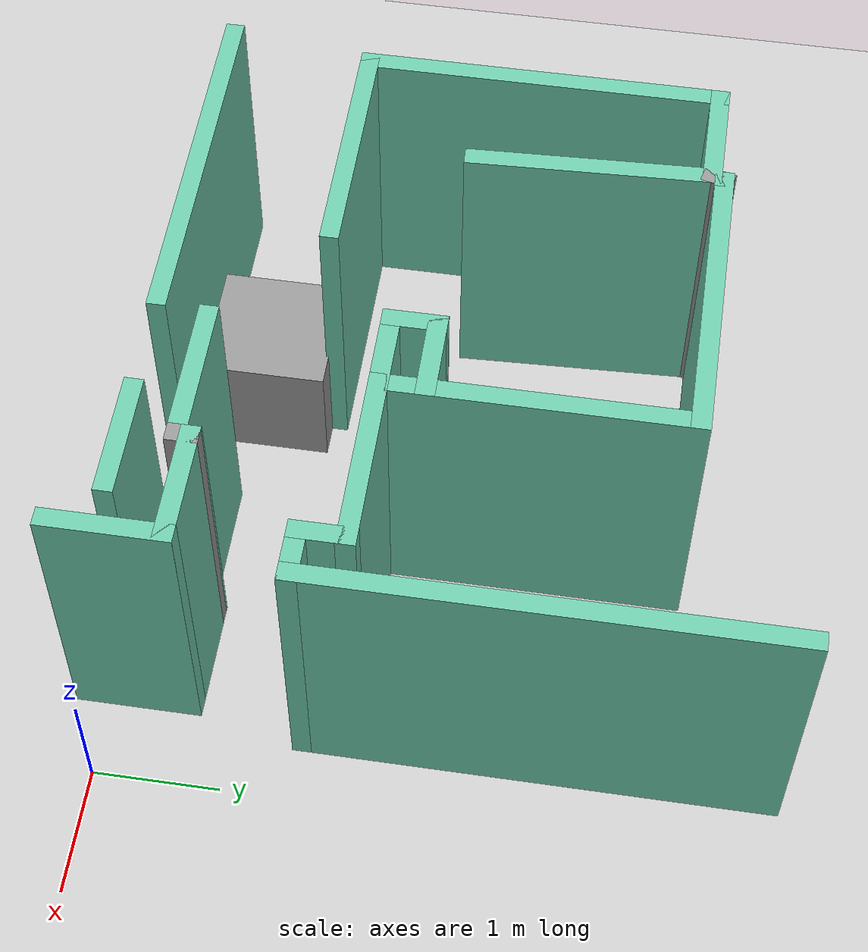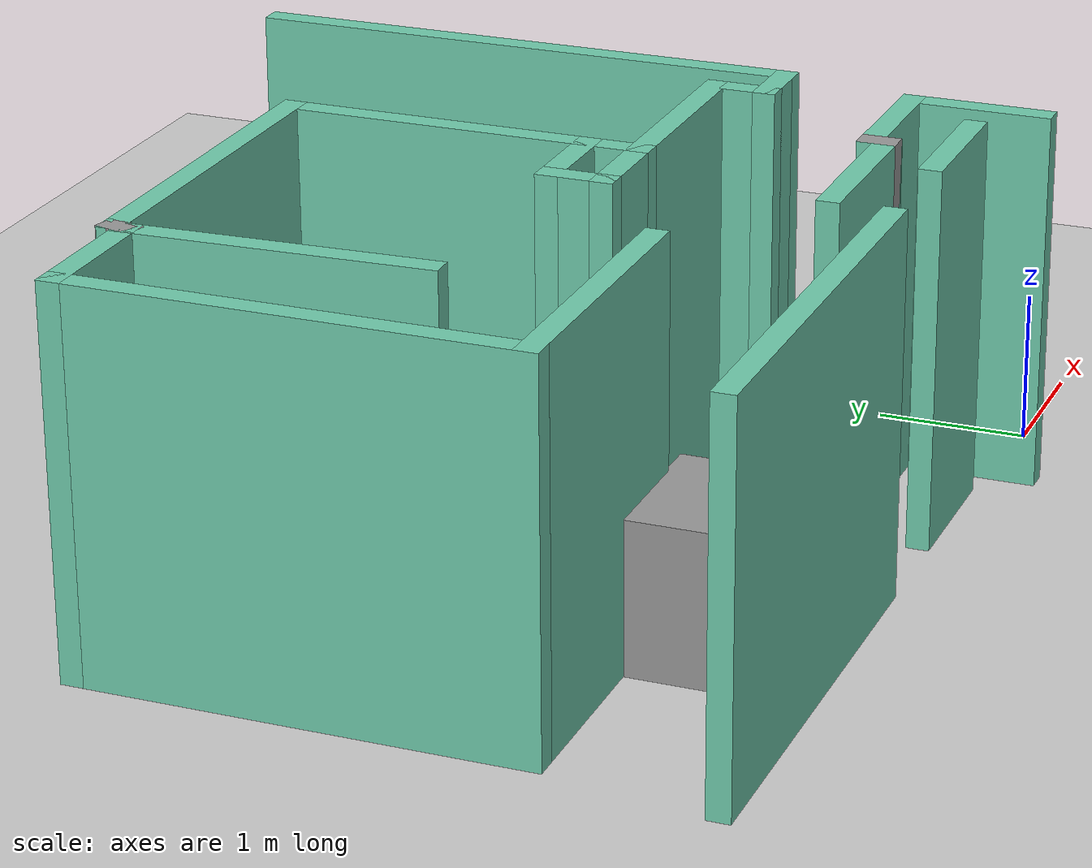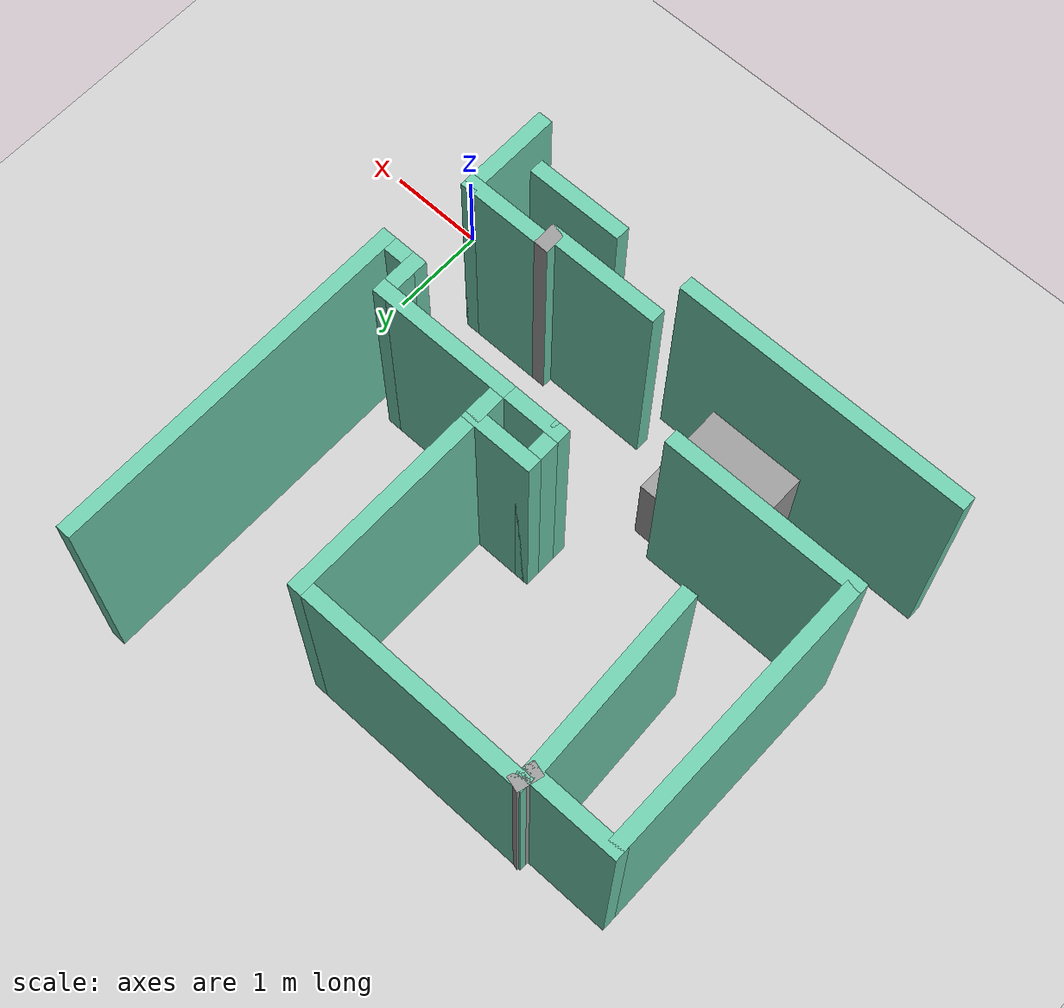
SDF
<sdf version="1.6">
 <world name="default">
  <model name="ground_plane">
   <static>1</static>
   <link name="link">
    <collision name="collision">
     <geometry><plane><normal>0 0 1</normal><size>100 100</size></plane></geometry>
     <surface><friction><ode><mu>100</mu><mu2>50</mu2></ode></friction></surface>
    </collision>
    <visual name="visual">
     <cast_shadows>0</cast_shadows>
     <geometry><plane><normal>0 0 1</normal><size>100 100</size></plane></geometry>
     <material>
      <script><uri>file://media/materials/scripts/gazebo.material</uri><name>Gazebo/Grey</name></script>
     </material>
    </visual>
   </link>
  </model>
  <model name="map_28">
   <link name="Wall_10">
    <pose>-3.17521 3.23882 0 0 -0 3.14159</pose>
    <visual name="Wall_10_Visual">
     <pose>0 0 1.25 0 -0 0</pose>
     <geometry><box><size>2.5 0.15 2.5</size></box></geometry>
     <material>
      <script><uri>file://media/materials/scripts/gazebo.material</uri><name>Gazebo/Grey</name></script>
      <ambient>0.435294 0.796078 0.67451 1</ambient>
      <shader type="pixel"/>
     </material>
     <meta><layer>0</layer></meta>
    </visual>
    <collision name="Wall_10_Collision">
     <pose>0 0 1.25 0 -0 0</pose>
     <geometry><box><size>2.5 0.15 2.5</size></box></geometry>
     <surface>
      <friction>
       <ode><mu>1</mu><mu2>1</mu2><fdir1>0 0 0</fdir1><slip1>0</slip1><slip2>0</slip2></ode>
       <torsional>
        <coefficient>1</coefficient>
        <patch_radius>0</patch_radius>
        <surface_radius>0</surface_radius>
        <use_patch_radius>1</use_patch_radius>
        <ode><slip>0</slip></ode>
       </torsional>
      </friction>
      <bounce><restitution_coefficient>0</restitution_coefficient><threshold>1e+06</threshold></bounce>
      <contact>
       <collide_without_contact>0</collide_without_contact>
       <collide_without_contact_bitmask>1</collide_without_contact_bitmask>
       <collide_bitmask>1</collide_bitmask>
       <ode>
        <soft_cfm>0</soft_cfm>
        <soft_erp>0.2</soft_erp>
        <kp>1e+13</kp>
        <kd>1</kd>
        <max_vel>0.01</max_vel>
        <min_depth>0</min_depth>
       </ode>
       <bullet>
        <split_impulse>1</split_impulse>
        <split_impulse_penetration_threshold>-0.01</split_impulse_penetration_threshold>
        <soft_cfm>0</soft_cfm>
        <soft_erp>0.2</soft_erp>
        <kp>1e+13</kp>
        <kd>1</kd>
       </bullet>
      </contact>
     </surface>
    </collision>
   </link>
   <link name="Wall_11">
    <pose>-4.3502 3.23882 0 0 -0 0</pose>
    <visual name="Wall_11_Visual">
     <pose>0 0 1.25 0 -0 0</pose>
     <geometry><box><size>0.15 0.15 2.5</size></box></geometry>
     <material>
      <script><uri>file://media/materials/scripts/gazebo.material</uri><name>Gazebo/Grey</name></script>
      <ambient>0.435294 0.796078 0.67451 1</ambient>
      <shader type="pixel"/>
     </material>
     <meta><layer>0</layer></meta>
    </visual>
    <collision name="Wall_11_Collision">
     <pose>0 0 1.25 0 -0 0</pose>
     <geometry><box><size>0.15 0.15 2.5</size></box></geometry>
     <surface>
      <friction>
       <ode><mu>1</mu><mu2>1</mu2><fdir1>0 0 0</fdir1><slip1>0</slip1><slip2>0</slip2></ode>
       <torsional>
        <coefficient>1</coefficient>
        <patch_radius>0</patch_radius>
        <surface_radius>0</surface_radius>
        <use_patch_radius>1</use_patch_radius>
        <ode><slip>0</slip></ode>
       </torsional>
      </friction>
      <bounce><restitution_coefficient>0</restitution_coefficient><threshold>1e+06</threshold></bounce>
      <contact>
       <collide_without_contact>0</collide_without_contact>
       <collide_without_contact_bitmask>1</collide_without_contact_bitmask>
       <collide_bitmask>1</collide_bitmask>
       <ode>
        <soft_cfm>0</soft_cfm>
        <soft_erp>0.2</soft_erp>
        <kp>1e+13</kp>
        <kd>1</kd>
        <max_vel>0.01</max_vel>
        <min_depth>0</min_depth>
       </ode>
       <bullet>
        <split_impulse>1</split_impulse>
        <split_impulse_penetration_threshold>-0.01</split_impulse_penetration_threshold>
        <soft_cfm>0</soft_cfm>
        <soft_erp>0.2</soft_erp>
        <kp>1e+13</kp>
        <kd>1</kd>
       </bullet>
      </contact>
     </surface>
    </collision>
   </link>
   <link name="Wall_114">
    <pose>-4.33787 2.20912 0 0 -0 1.61173</pose>
    <visual name="Wall_114_Visual">
     <pose>0 0 1.25 0 -0 0</pose>
     <geometry><box><size>2.01778 0.15 2.5</size></box></geometry>
     <material>
      <script><uri>file://media/materials/scripts/gazebo.material</uri><name>Gazebo/Grey</name></script>
      <ambient>0.435294 0.796078 0.67451 1</ambient>
      <shader type="pixel"/>
     </material>
     <meta><layer>0</layer></meta>
    </visual>
    <collision name="Wall_114_Collision">
     <pose>0 0 1.25 0 -0 0</pose>
     <geometry><box><size>2.01778 0.15 2.5</size></box></geometry>
     <surface>
      <friction>
       <ode><mu>1</mu><mu2>1</mu2><fdir1>0 0 0</fdir1><slip1>0</slip1><slip2>0</slip2></ode>
       <torsional>
        <coefficient>1</coefficient>
        <patch_radius>0</patch_radius>
        <surface_radius>0</surface_radius>
        <use_patch_radius>1</use_patch_radius>
        <ode><slip>0</slip></ode>
       </torsional>
      </friction>
      <bounce><restitution_coefficient>0</restitution_coefficient><threshold>1e+06</threshold></bounce>
      <contact>
       <collide_without_contact>0</collide_without_contact>
       <collide_without_contact_bitmask>1</collide_without_contact_bitmask>
       <collide_bitmask>1</collide_bitmask>
       <ode>
        <soft_cfm>0</soft_cfm>
        <soft_erp>0.2</soft_erp>
        <kp>1e+13</kp>
        <kd>1</kd>
        <max_vel>0.01</max_vel>
        <min_depth>0</min_depth>
       </ode>
       <bullet>
        <split_impulse>1</split_impulse>
        <split_impulse_penetration_threshold>-0.01</split_impulse_penetration_threshold>
        <soft_cfm>0</soft_cfm>
        <soft_erp>0.2</soft_erp>
        <kp>1e+13</kp>
        <kd>1</kd>
       </bullet>
      </contact>
     </surface>
    </collision>
   </link>
   <link name="Wall_118">
    <pose>-2.30021 0.888824 0 0 -0 3.14159</pose>
    <visual name="Wall_118_Visual">
     <pose>0 0 1.25 0 -0 0</pose>
     <geometry><box><size>0.75 0.15 2.5</size></box></geometry>
     <material>
      <script><uri>file://media/materials/scripts/gazebo.material</uri><name>Gazebo/Grey</name></script>
      <ambient>0.435294 0.796078 0.67451 1</ambient>
      <shader type="pixel"/>
     </material>
     <meta><layer>0</layer></meta>
    </visual>
    <collision name="Wall_118_Collision">
     <pose>0 0 1.25 0 -0 0</pose>
     <geometry><box><size>0.75 0.15 2.5</size></box></geometry>
     <surface>
      <friction>
       <ode><mu>1</mu><mu2>1</mu2><fdir1>0 0 0</fdir1><slip1>0</slip1><slip2>0</slip2></ode>
       <torsional>
        <coefficient>1</coefficient>
        <patch_radius>0</patch_radius>
        <surface_radius>0</surface_radius>
        <use_patch_radius>1</use_patch_radius>
        <ode><slip>0</slip></ode>
       </torsional>
      </friction>
      <bounce><restitution_coefficient>0</restitution_coefficient><threshold>1e+06</threshold></bounce>
      <contact>
       <collide_without_contact>0</collide_without_contact>
       <collide_without_contact_bitmask>1</collide_without_contact_bitmask>
       <collide_bitmask>1</collide_bitmask>
       <ode>
        <soft_cfm>0</soft_cfm>
        <soft_erp>0.2</soft_erp>
        <kp>1e+13</kp>
        <kd>1</kd>
        <max_vel>0.01</max_vel>
        <min_depth>0</min_depth>
       </ode>
       <bullet>
        <split_impulse>1</split_impulse>
        <split_impulse_penetration_threshold>-0.01</split_impulse_penetration_threshold>
        <soft_cfm>0</soft_cfm>
        <soft_erp>0.2</soft_erp>
        <kp>1e+13</kp>
        <kd>1</kd>
       </bullet>
      </contact>
     </surface>
    </collision>
   </link>
   <link name="Wall_119">
    <pose>-2.6002 1.06382 0 0 -0 1.5708</pose>
    <visual name="Wall_119_Visual">
     <pose>0 0 1.25 0 -0 0</pose>
     <geometry><box><size>0.5 0.15 2.5</size></box></geometry>
     <material>
      <script><uri>file://media/materials/scripts/gazebo.material</uri><name>Gazebo/Grey</name></script>
      <ambient>0.435294 0.796078 0.67451 1</ambient>
      <shader type="pixel"/>
     </material>
     <meta><layer>0</layer></meta>
    </visual>
    <collision name="Wall_119_Collision">
     <pose>0 0 1.25 0 -0 0</pose>
     <geometry><box><size>0.5 0.15 2.5</size></box></geometry>
     <surface>
      <friction>
       <ode><mu>1</mu><mu2>1</mu2><fdir1>0 0 0</fdir1><slip1>0</slip1><slip2>0</slip2></ode>
       <torsional>
        <coefficient>1</coefficient>
        <patch_radius>0</patch_radius>
        <surface_radius>0</surface_radius>
        <use_patch_radius>1</use_patch_radius>
        <ode><slip>0</slip></ode>
       </torsional>
      </friction>
      <bounce><restitution_coefficient>0</restitution_coefficient><threshold>1e+06</threshold></bounce>
      <contact>
       <collide_without_contact>0</collide_without_contact>
       <collide_without_contact_bitmask>1</collide_without_contact_bitmask>
       <collide_bitmask>1</collide_bitmask>
       <ode>
        <soft_cfm>0</soft_cfm>
        <soft_erp>0.2</soft_erp>
        <kp>1e+13</kp>
        <kd>1</kd>
        <max_vel>0.01</max_vel>
        <min_depth>0</min_depth>
       </ode>
       <bullet>
        <split_impulse>1</split_impulse>
        <split_impulse_penetration_threshold>-0.01</split_impulse_penetration_threshold>
        <soft_cfm>0</soft_cfm>
        <soft_erp>0.2</soft_erp>
        <kp>1e+13</kp>
        <kd>1</kd>
       </bullet>
      </contact>
     </surface>
    </collision>
   </link>
   <link name="Wall_120">
    <pose>-2.30021 1.23882 0 0 -0 0</pose>
    <visual name="Wall_120_Visual">
     <pose>0 0 1.25 0 -0 0</pose>
     <geometry><box><size>0.75 0.15 2.5</size></box></geometry>
     <material>
      <script><uri>file://media/materials/scripts/gazebo.material</uri><name>Gazebo/Grey</name></script>
      <ambient>0.435294 0.796078 0.67451 1</ambient>
      <shader type="pixel"/>
     </material>
     <meta><layer>0</layer></meta>
    </visual>
    <collision name="Wall_120_Collision">
     <pose>0 0 1.25 0 -0 0</pose>
     <geometry><box><size>0.75 0.15 2.5</size></box></geometry>
     <surface>
      <friction>
       <ode><mu>1</mu><mu2>1</mu2><fdir1>0 0 0</fdir1><slip1>0</slip1><slip2>0</slip2></ode>
       <torsional>
        <coefficient>1</coefficient>
        <patch_radius>0</patch_radius>
        <surface_radius>0</surface_radius>
        <use_patch_radius>1</use_patch_radius>
        <ode><slip>0</slip></ode>
       </torsional>
      </friction>
      <bounce><restitution_coefficient>0</restitution_coefficient><threshold>1e+06</threshold></bounce>
      <contact>
       <collide_without_contact>0</collide_without_contact>
       <collide_without_contact_bitmask>1</collide_without_contact_bitmask>
       <collide_bitmask>1</collide_bitmask>
       <ode>
        <soft_cfm>0</soft_cfm>
        <soft_erp>0.2</soft_erp>
        <kp>1e+13</kp>
        <kd>1</kd>
        <max_vel>0.01</max_vel>
        <min_depth>0</min_depth>
       </ode>
       <bullet>
        <split_impulse>1</split_impulse>
        <split_impulse_penetration_threshold>-0.01</split_impulse_penetration_threshold>
        <soft_cfm>0</soft_cfm>
        <soft_erp>0.2</soft_erp>
        <kp>1e+13</kp>
        <kd>1</kd>
       </bullet>
      </contact>
     </surface>
    </collision>
   </link>
   <link name="Wall_14">
    <pose>-4.36315 3.19053 0 0 0 -1.8326</pose>
    <visual name="Wall_14_Visual">
     <pose>0 0 1.25 0 -0 0</pose>
     <geometry><box><size>0.25 0.15 2.5</size></box></geometry>
     <material>
      <script><uri>file://media/materials/scripts/gazebo.material</uri><name>Gazebo/Grey</name></script>
      <ambient>1 1 1 1</ambient>
      <shader type="pixel"/>
     </material>
     <meta><layer>0</layer></meta>
    </visual>
    <collision name="Wall_14_Collision">
     <pose>0 0 1.25 0 -0 0</pose>
     <geometry><box><size>0.25 0.15 2.5</size></box></geometry>
     <surface>
      <friction>
       <ode><mu>1</mu><mu2>1</mu2><fdir1>0 0 0</fdir1><slip1>0</slip1><slip2>0</slip2></ode>
       <torsional>
        <coefficient>1</coefficient>
        <patch_radius>0</patch_radius>
        <surface_radius>0</surface_radius>
        <use_patch_radius>1</use_patch_radius>
        <ode><slip>0</slip></ode>
       </torsional>
      </friction>
      <bounce><restitution_coefficient>0</restitution_coefficient><threshold>1e+06</threshold></bounce>
      <contact>
       <collide_without_contact>0</collide_without_contact>
       <collide_without_contact_bitmask>1</collide_without_contact_bitmask>
       <collide_bitmask>1</collide_bitmask>
       <ode>
        <soft_cfm>0</soft_cfm>
        <soft_erp>0.2</soft_erp>
        <kp>1e+13</kp>
        <kd>1</kd>
        <max_vel>0.01</max_vel>
        <min_depth>0</min_depth>
       </ode>
       <bullet>
        <split_impulse>1</split_impulse>
        <split_impulse_penetration_threshold>-0.01</split_impulse_penetration_threshold>
        <soft_cfm>0</soft_cfm>
        <soft_erp>0.2</soft_erp>
        <kp>1e+13</kp>
        <kd>1</kd>
       </bullet>
      </contact>
     </surface>
    </collision>
   </link>
   <link name="Wall_15">
    <pose>-4.80109 3.14223 0 0 -0 3.14159</pose>
    <visual name="Wall_15_Visual">
     <pose>0 0 1.25 0 -0 0</pose>
     <geometry><box><size>1 0.15 2.5</size></box></geometry>
     <material>
      <script><uri>file://media/materials/scripts/gazebo.material</uri><name>Gazebo/Grey</name></script>
      <ambient>0.435294 0.796078 0.67451 1</ambient>
      <shader type="pixel"/>
     </material>
     <meta><layer>0</layer></meta>
    </visual>
    <collision name="Wall_15_Collision">
     <pose>0 0 1.25 0 -0 0</pose>
     <geometry><box><size>1 0.15 2.5</size></box></geometry>
     <surface>
      <friction>
       <ode><mu>1</mu><mu2>1</mu2><fdir1>0 0 0</fdir1><slip1>0</slip1><slip2>0</slip2></ode>
       <torsional>
        <coefficient>1</coefficient>
        <patch_radius>0</patch_radius>
        <surface_radius>0</surface_radius>
        <use_patch_radius>1</use_patch_radius>
        <ode><slip>0</slip></ode>
       </torsional>
      </friction>
      <bounce><restitution_coefficient>0</restitution_coefficient><threshold>1e+06</threshold></bounce>
      <contact>
       <collide_without_contact>0</collide_without_contact>
       <collide_without_contact_bitmask>1</collide_without_contact_bitmask>
       <collide_bitmask>1</collide_bitmask>
       <ode>
        <soft_cfm>0</soft_cfm>
        <soft_erp>0.2</soft_erp>
        <kp>1e+13</kp>
        <kd>1</kd>
        <max_vel>0.01</max_vel>
        <min_depth>0</min_depth>
       </ode>
       <bullet>
        <split_impulse>1</split_impulse>
        <split_impulse_penetration_threshold>-0.01</split_impulse_penetration_threshold>
        <soft_cfm>0</soft_cfm>
        <soft_erp>0.2</soft_erp>
        <kp>1e+13</kp>
        <kd>1</kd>
       </bullet>
      </contact>
     </surface>
    </collision>
   </link>
   <link name="Wall_16">
    <pose>-5.22609 1.71723 0 0 0 -1.5708</pose>
    <visual name="Wall_16_Visual">
     <pose>0 0 1.25 0 -0 0</pose>
     <geometry><box><size>3 0.15 2.5</size></box></geometry>
     <material>
      <script><uri>file://media/materials/scripts/gazebo.material</uri><name>Gazebo/Grey</name></script>
      <ambient>0.435294 0.796078 0.67451 1</ambient>
      <shader type="pixel"/>
     </material>
     <meta><layer>0</layer></meta>
    </visual>
    <collision name="Wall_16_Collision">
     <pose>0 0 1.25 0 -0 0</pose>
     <geometry><box><size>3 0.15 2.5</size></box></geometry>
     <surface>
      <friction>
       <ode><mu>1</mu><mu2>1</mu2><fdir1>0 0 0</fdir1><slip1>0</slip1><slip2>0</slip2></ode>
       <torsional>
        <coefficient>1</coefficient>
        <patch_radius>0</patch_radius>
        <surface_radius>0</surface_radius>
        <use_patch_radius>1</use_patch_radius>
        <ode><slip>0</slip></ode>
       </torsional>
      </friction>
      <bounce><restitution_coefficient>0</restitution_coefficient><threshold>1e+06</threshold></bounce>
      <contact>
       <collide_without_contact>0</collide_without_contact>
       <collide_without_contact_bitmask>1</collide_without_contact_bitmask>
       <collide_bitmask>1</collide_bitmask>
       <ode>
        <soft_cfm>0</soft_cfm>
        <soft_erp>0.2</soft_erp>
        <kp>1e+13</kp>
        <kd>1</kd>
        <max_vel>0.01</max_vel>
        <min_depth>0</min_depth>
       </ode>
       <bullet>
        <split_impulse>1</split_impulse>
        <split_impulse_penetration_threshold>-0.01</split_impulse_penetration_threshold>
        <soft_cfm>0</soft_cfm>
        <soft_erp>0.2</soft_erp>
        <kp>1e+13</kp>
        <kd>1</kd>
       </bullet>
      </contact>
     </surface>
    </collision>
   </link>
   <link name="Wall_17">
    <pose>-4.30109 0.292231 0 0 -0 0</pose>
    <visual name="Wall_17_Visual">
     <pose>0 0 1.25 0 -0 0</pose>
     <geometry><box><size>2 0.15 2.5</size></box></geometry>
     <material>
      <script><uri>file://media/materials/scripts/gazebo.material</uri><name>Gazebo/Grey</name></script>
      <ambient>0.435294 0.796078 0.67451 1</ambient>
      <shader type="pixel"/>
     </material>
     <meta><layer>0</layer></meta>
    </visual>
    <collision name="Wall_17_Collision">
     <pose>0 0 1.25 0 -0 0</pose>
     <geometry><box><size>2 0.15 2.5</size></box></geometry>
     <surface>
      <friction>
       <ode><mu>1</mu><mu2>1</mu2><fdir1>0 0 0</fdir1><slip1>0</slip1><slip2>0</slip2></ode>
       <torsional>
        <coefficient>1</coefficient>
        <patch_radius>0</patch_radius>
        <surface_radius>0</surface_radius>
        <use_patch_radius>1</use_patch_radius>
        <ode><slip>0</slip></ode>
       </torsional>
      </friction>
      <bounce><restitution_coefficient>0</restitution_coefficient><threshold>1e+06</threshold></bounce>
      <contact>
       <collide_without_contact>0</collide_without_contact>
       <collide_without_contact_bitmask>1</collide_without_contact_bitmask>
       <collide_bitmask>1</collide_bitmask>
       <ode>
        <soft_cfm>0</soft_cfm>
        <soft_erp>0.2</soft_erp>
        <kp>1e+13</kp>
        <kd>1</kd>
        <max_vel>0.01</max_vel>
        <min_depth>0</min_depth>
       </ode>
       <bullet>
        <split_impulse>1</split_impulse>
        <split_impulse_penetration_threshold>-0.01</split_impulse_penetration_threshold>
        <soft_cfm>0</soft_cfm>
        <soft_erp>0.2</soft_erp>
        <kp>1e+13</kp>
        <kd>1</kd>
       </bullet>
      </contact>
     </surface>
    </collision>
   </link>
   <link name="Wall_23">
    <pose>-1.8855 -0.469695 0 0 -0 0</pose>
    <visual name="Wall_23_Visual">
     <pose>0 0 1.25 0 -0 0</pose>
     <geometry><box><size>1.25 0.15 2.5</size></box></geometry>
     <material>
      <script><uri>file://media/materials/scripts/gazebo.material</uri><name>Gazebo/Grey</name></script>
      <ambient>0.435294 0.796078 0.67451 1</ambient>
      <shader type="pixel"/>
     </material>
     <meta><layer>0</layer></meta>
    </visual>
    <collision name="Wall_23_Collision">
     <pose>0 0 1.25 0 -0 0</pose>
     <geometry><box><size>1.25 0.15 2.5</size></box></geometry>
     <surface>
      <friction>
       <ode><mu>1</mu><mu2>1</mu2><fdir1>0 0 0</fdir1><slip1>0</slip1><slip2>0</slip2></ode>
       <torsional>
        <coefficient>1</coefficient>
        <patch_radius>0</patch_radius>
        <surface_radius>0</surface_radius>
        <use_patch_radius>1</use_patch_radius>
        <ode><slip>0</slip></ode>
       </torsional>
      </friction>
      <bounce><restitution_coefficient>0</restitution_coefficient><threshold>1e+06</threshold></bounce>
      <contact>
       <collide_without_contact>0</collide_without_contact>
       <collide_without_contact_bitmask>1</collide_without_contact_bitmask>
       <collide_bitmask>1</collide_bitmask>
       <ode>
        <soft_cfm>0</soft_cfm>
        <soft_erp>0.2</soft_erp>
        <kp>1e+13</kp>
        <kd>1</kd>
        <max_vel>0.01</max_vel>
        <min_depth>0</min_depth>
       </ode>
       <bullet>
        <split_impulse>1</split_impulse>
        <split_impulse_penetration_threshold>-0.01</split_impulse_penetration_threshold>
        <soft_cfm>0</soft_cfm>
        <soft_erp>0.2</soft_erp>
        <kp>1e+13</kp>
        <kd>1</kd>
       </bullet>
      </contact>
     </surface>
    </collision>
   </link>
   <link name="Wall_24">
    <pose>-1.3355 -0.419695 0 0 -0 1.5708</pose>
    <visual name="Wall_24_Visual">
     <pose>0 0 1.25 0 -0 0</pose>
     <geometry><box><size>0.25 0.15 2.5</size></box></geometry>
     <material>
      <script><uri>file://media/materials/scripts/gazebo.material</uri><name>Gazebo/Grey</name></script>
      <ambient>1 1 1 1</ambient>
      <shader type="pixel"/>
     </material>
     <meta><layer>0</layer></meta>
    </visual>
    <collision name="Wall_24_Collision">
     <pose>0 0 1.25 0 -0 0</pose>
     <geometry><box><size>0.25 0.15 2.5</size></box></geometry>
     <surface>
      <friction>
       <ode><mu>1</mu><mu2>1</mu2><fdir1>0 0 0</fdir1><slip1>0</slip1><slip2>0</slip2></ode>
       <torsional>
        <coefficient>1</coefficient>
        <patch_radius>0</patch_radius>
        <surface_radius>0</surface_radius>
        <use_patch_radius>1</use_patch_radius>
        <ode><slip>0</slip></ode>
       </torsional>
      </friction>
      <bounce><restitution_coefficient>0</restitution_coefficient><threshold>1e+06</threshold></bounce>
      <contact>
       <collide_without_contact>0</collide_without_contact>
       <collide_without_contact_bitmask>1</collide_without_contact_bitmask>
       <collide_bitmask>1</collide_bitmask>
       <ode>
        <soft_cfm>0</soft_cfm>
        <soft_erp>0.2</soft_erp>
        <kp>1e+13</kp>
        <kd>1</kd>
        <max_vel>0.01</max_vel>
        <min_depth>0</min_depth>
       </ode>
       <bullet>
        <split_impulse>1</split_impulse>
        <split_impulse_penetration_threshold>-0.01</split_impulse_penetration_threshold>
        <soft_cfm>0</soft_cfm>
        <soft_erp>0.2</soft_erp>
        <kp>1e+13</kp>
        <kd>1</kd>
       </bullet>
      </contact>
     </surface>
    </collision>
   </link>
   <link name="Wall_25">
    <pose>-0.910501 -0.369695 0 0 -0 0</pose>
    <visual name="Wall_25_Visual">
     <pose>0 0 1.25 0 -0 0</pose>
     <geometry><box><size>1 0.15 2.5</size></box></geometry>
     <material>
      <script><uri>file://media/materials/scripts/gazebo.material</uri><name>Gazebo/Grey</name></script>
      <ambient>0.435294 0.796078 0.67451 1</ambient>
      <shader type="pixel"/>
     </material>
     <meta><layer>0</layer></meta>
    </visual>
    <collision name="Wall_25_Collision">
     <pose>0 0 1.25 0 -0 0</pose>
     <geometry><box><size>1 0.15 2.5</size></box></geometry>
     <surface>
      <friction>
       <ode><mu>1</mu><mu2>1</mu2><fdir1>0 0 0</fdir1><slip1>0</slip1><slip2>0</slip2></ode>
       <torsional>
        <coefficient>1</coefficient>
        <patch_radius>0</patch_radius>
        <surface_radius>0</surface_radius>
        <use_patch_radius>1</use_patch_radius>
        <ode><slip>0</slip></ode>
       </torsional>
      </friction>
      <bounce><restitution_coefficient>0</restitution_coefficient><threshold>1e+06</threshold></bounce>
      <contact>
       <collide_without_contact>0</collide_without_contact>
       <collide_without_contact_bitmask>1</collide_without_contact_bitmask>
       <collide_bitmask>1</collide_bitmask>
       <ode>
        <soft_cfm>0</soft_cfm>
        <soft_erp>0.2</soft_erp>
        <kp>1e+13</kp>
        <kd>1</kd>
        <max_vel>0.01</max_vel>
        <min_depth>0</min_depth>
       </ode>
       <bullet>
        <split_impulse>1</split_impulse>
        <split_impulse_penetration_threshold>-0.01</split_impulse_penetration_threshold>
        <soft_cfm>0</soft_cfm>
        <soft_erp>0.2</soft_erp>
        <kp>1e+13</kp>
        <kd>1</kd>
       </bullet>
      </contact>
     </surface>
    </collision>
   </link>
   <link name="Wall_26">
    <pose>-0.485501 -0.794695 0 0 0 -1.5708</pose>
    <visual name="Wall_26_Visual">
     <pose>0 0 1.25 0 -0 0</pose>
     <geometry><box><size>1 0.15 2.5</size></box></geometry>
     <material>
      <script><uri>file://media/materials/scripts/gazebo.material</uri><name>Gazebo/Grey</name></script>
      <ambient>0.435294 0.796078 0.67451 1</ambient>
      <shader type="pixel"/>
     </material>
     <meta><layer>0</layer></meta>
    </visual>
    <collision name="Wall_26_Collision">
     <pose>0 0 1.25 0 -0 0</pose>
     <geometry><box><size>1 0.15 2.5</size></box></geometry>
     <surface>
      <friction>
       <ode><mu>1</mu><mu2>1</mu2><fdir1>0 0 0</fdir1><slip1>0</slip1><slip2>0</slip2></ode>
       <torsional>
        <coefficient>1</coefficient>
        <patch_radius>0</patch_radius>
        <surface_radius>0</surface_radius>
        <use_patch_radius>1</use_patch_radius>
        <ode><slip>0</slip></ode>
       </torsional>
      </friction>
      <bounce><restitution_coefficient>0</restitution_coefficient><threshold>1e+06</threshold></bounce>
      <contact>
       <collide_without_contact>0</collide_without_contact>
       <collide_without_contact_bitmask>1</collide_without_contact_bitmask>
       <collide_bitmask>1</collide_bitmask>
       <ode>
        <soft_cfm>0</soft_cfm>
        <soft_erp>0.2</soft_erp>
        <kp>1e+13</kp>
        <kd>1</kd>
        <max_vel>0.01</max_vel>
        <min_depth>0</min_depth>
       </ode>
       <bullet>
        <split_impulse>1</split_impulse>
        <split_impulse_penetration_threshold>-0.01</split_impulse_penetration_threshold>
        <soft_cfm>0</soft_cfm>
        <soft_erp>0.2</soft_erp>
        <kp>1e+13</kp>
        <kd>1</kd>
       </bullet>
      </contact>
     </surface>
    </collision>
   </link>
   <link name="Wall_37">
    <pose>-1.2605 -0.869695 0 0 -0 3.14159</pose>
    <visual name="Wall_37_Visual">
     <pose>0 0 1.25 0 -0 0</pose>
     <geometry><box><size>1 0.15 2.5</size></box></geometry>
     <material>
      <script><uri>file://media/materials/scripts/gazebo.material</uri><name>Gazebo/Grey</name></script>
      <ambient>0.435294 0.796078 0.67451 1</ambient>
      <shader type="pixel"/>
     </material>
     <meta><layer>0</layer></meta>
    </visual>
    <collision name="Wall_37_Collision">
     <pose>0 0 1.25 0 -0 0</pose>
     <geometry><box><size>1 0.15 2.5</size></box></geometry>
     <surface>
      <friction>
       <ode><mu>1</mu><mu2>1</mu2><fdir1>0 0 0</fdir1><slip1>0</slip1><slip2>0</slip2></ode>
       <torsional>
        <coefficient>1</coefficient>
        <patch_radius>0</patch_radius>
        <surface_radius>0</surface_radius>
        <use_patch_radius>1</use_patch_radius>
        <ode><slip>0</slip></ode>
       </torsional>
      </friction>
      <bounce><restitution_coefficient>0</restitution_coefficient><threshold>1e+06</threshold></bounce>
      <contact>
       <collide_without_contact>0</collide_without_contact>
       <collide_without_contact_bitmask>1</collide_without_contact_bitmask>
       <collide_bitmask>1</collide_bitmask>
       <ode>
        <soft_cfm>0</soft_cfm>
        <soft_erp>0.2</soft_erp>
        <kp>1e+13</kp>
        <kd>1</kd>
        <max_vel>0.01</max_vel>
        <min_depth>0</min_depth>
       </ode>
       <bullet>
        <split_impulse>1</split_impulse>
        <split_impulse_penetration_threshold>-0.01</split_impulse_penetration_threshold>
        <soft_cfm>0</soft_cfm>
        <soft_erp>0.2</soft_erp>
        <kp>1e+13</kp>
        <kd>1</kd>
       </bullet>
      </contact>
     </surface>
    </collision>
   </link>
   <link name="Wall_43">
    <pose>-3.9605 -0.869695 0 0 -0 3.14159</pose>
    <visual name="Wall_43_Visual">
     <pose>0 0 1.25 0 -0 0</pose>
     <geometry><box><size>3 0.15 2.5</size></box></geometry>
     <material>
      <script><uri>file://media/materials/scripts/gazebo.material</uri><name>Gazebo/Grey</name></script>
      <ambient>0.435294 0.796078 0.67451 1</ambient>
      <shader type="pixel"/>
     </material>
     <meta><layer>0</layer></meta>
    </visual>
    <collision name="Wall_43_Collision">
     <pose>0 0 1.25 0 -0 0</pose>
     <geometry><box><size>3 0.15 2.5</size></box></geometry>
     <surface>
      <friction>
       <ode><mu>1</mu><mu2>1</mu2><fdir1>0 0 0</fdir1><slip1>0</slip1><slip2>0</slip2></ode>
       <torsional>
        <coefficient>1</coefficient>
        <patch_radius>0</patch_radius>
        <surface_radius>0</surface_radius>
        <use_patch_radius>1</use_patch_radius>
        <ode><slip>0</slip></ode>
       </torsional>
      </friction>
      <bounce><restitution_coefficient>0</restitution_coefficient><threshold>1e+06</threshold></bounce>
      <contact>
       <collide_without_contact>0</collide_without_contact>
       <collide_without_contact_bitmask>1</collide_without_contact_bitmask>
       <collide_bitmask>1</collide_bitmask>
       <ode>
        <soft_cfm>0</soft_cfm>
        <soft_erp>0.2</soft_erp>
        <kp>1e+13</kp>
        <kd>1</kd>
        <max_vel>0.01</max_vel>
        <min_depth>0</min_depth>
       </ode>
       <bullet>
        <split_impulse>1</split_impulse>
        <split_impulse_penetration_threshold>-0.01</split_impulse_penetration_threshold>
        <soft_cfm>0</soft_cfm>
        <soft_erp>0.2</soft_erp>
        <kp>1e+13</kp>
        <kd>1</kd>
       </bullet>
      </contact>
     </surface>
    </collision>
   </link>
   <link name="Wall_5">
    <pose>-0.300205 2.33882 0 0 0 -1.5708</pose>
    <visual name="Wall_5_Visual">
     <pose>0 0 1.25 0 -0 0</pose>
     <geometry><box><size>3.75 0.15 2.5</size></box></geometry>
     <material>
      <script><uri>file://media/materials/scripts/gazebo.material</uri><name>Gazebo/Grey</name></script>
      <ambient>0.435294 0.796078 0.67451 1</ambient>
      <shader type="pixel"/>
     </material>
     <meta><layer>0</layer></meta>
    </visual>
    <collision name="Wall_5_Collision">
     <pose>0 0 1.25 0 -0 0</pose>
     <geometry><box><size>3.75 0.15 2.5</size></box></geometry>
     <surface>
      <friction>
       <ode><mu>1</mu><mu2>1</mu2><fdir1>0 0 0</fdir1><slip1>0</slip1><slip2>0</slip2></ode>
       <torsional>
        <coefficient>1</coefficient>
        <patch_radius>0</patch_radius>
        <surface_radius>0</surface_radius>
        <use_patch_radius>1</use_patch_radius>
        <ode><slip>0</slip></ode>
       </torsional>
      </friction>
      <bounce><restitution_coefficient>0</restitution_coefficient><threshold>1e+06</threshold></bounce>
      <contact>
       <collide_without_contact>0</collide_without_contact>
       <collide_without_contact_bitmask>1</collide_without_contact_bitmask>
       <collide_bitmask>1</collide_bitmask>
       <ode>
        <soft_cfm>0</soft_cfm>
        <soft_erp>0.2</soft_erp>
        <kp>1e+13</kp>
        <kd>1</kd>
        <max_vel>0.01</max_vel>
        <min_depth>0</min_depth>
       </ode>
       <bullet>
        <split_impulse>1</split_impulse>
        <split_impulse_penetration_threshold>-0.01</split_impulse_penetration_threshold>
        <soft_cfm>0</soft_cfm>
        <soft_erp>0.2</soft_erp>
        <kp>1e+13</kp>
        <kd>1</kd>
       </bullet>
      </contact>
     </surface>
    </collision>
   </link>
   <link name="Wall_6">
    <pose>-0.475205 0.538824 0 0 -0 3.14159</pose>
    <visual name="Wall_6_Visual">
     <pose>0 0 1.25 0 -0 0</pose>
     <geometry><box><size>0.5 0.15 2.5</size></box></geometry>
     <material>
      <script><uri>file://media/materials/scripts/gazebo.material</uri><name>Gazebo/Grey</name></script>
      <ambient>0.435294 0.796078 0.67451 1</ambient>
      <shader type="pixel"/>
     </material>
     <meta><layer>0</layer></meta>
    </visual>
    <collision name="Wall_6_Collision">
     <pose>0 0 1.25 0 -0 0</pose>
     <geometry><box><size>0.5 0.15 2.5</size></box></geometry>
     <surface>
      <friction>
       <ode><mu>1</mu><mu2>1</mu2><fdir1>0 0 0</fdir1><slip1>0</slip1><slip2>0</slip2></ode>
       <torsional>
        <coefficient>1</coefficient>
        <patch_radius>0</patch_radius>
        <surface_radius>0</surface_radius>
        <use_patch_radius>1</use_patch_radius>
        <ode><slip>0</slip></ode>
       </torsional>
      </friction>
      <bounce><restitution_coefficient>0</restitution_coefficient><threshold>1e+06</threshold></bounce>
      <contact>
       <collide_without_contact>0</collide_without_contact>
       <collide_without_contact_bitmask>1</collide_without_contact_bitmask>
       <collide_bitmask>1</collide_bitmask>
       <ode>
        <soft_cfm>0</soft_cfm>
        <soft_erp>0.2</soft_erp>
        <kp>1e+13</kp>
        <kd>1</kd>
        <max_vel>0.01</max_vel>
        <min_depth>0</min_depth>
       </ode>
       <bullet>
        <split_impulse>1</split_impulse>
        <split_impulse_penetration_threshold>-0.01</split_impulse_penetration_threshold>
        <soft_cfm>0</soft_cfm>
        <soft_erp>0.2</soft_erp>
        <kp>1e+13</kp>
        <kd>1</kd>
       </bullet>
      </contact>
     </surface>
    </collision>
   </link>
   <link name="Wall_7">
    <pose>-0.650205 0.713824 0 0 -0 1.5708</pose>
    <visual name="Wall_7_Visual">
     <pose>0 0 1.25 0 -0 0</pose>
     <geometry><box><size>0.5 0.15 2.5</size></box></geometry>
     <material>
      <script><uri>file://media/materials/scripts/gazebo.material</uri><name>Gazebo/Grey</name></script>
      <ambient>0.435294 0.796078 0.67451 1</ambient>
      <shader type="pixel"/>
     </material>
     <meta><layer>0</layer></meta>
    </visual>
    <collision name="Wall_7_Collision">
     <pose>0 0 1.25 0 -0 0</pose>
     <geometry><box><size>0.5 0.15 2.5</size></box></geometry>
     <surface>
      <friction>
       <ode><mu>1</mu><mu2>1</mu2><fdir1>0 0 0</fdir1><slip1>0</slip1><slip2>0</slip2></ode>
       <torsional>
        <coefficient>1</coefficient>
        <patch_radius>0</patch_radius>
        <surface_radius>0</surface_radius>
        <use_patch_radius>1</use_patch_radius>
        <ode><slip>0</slip></ode>
       </torsional>
      </friction>
      <bounce><restitution_coefficient>0</restitution_coefficient><threshold>1e+06</threshold></bounce>
      <contact>
       <collide_without_contact>0</collide_without_contact>
       <collide_without_contact_bitmask>1</collide_without_contact_bitmask>
       <collide_bitmask>1</collide_bitmask>
       <ode>
        <soft_cfm>0</soft_cfm>
        <soft_erp>0.2</soft_erp>
        <kp>1e+13</kp>
        <kd>1</kd>
        <max_vel>0.01</max_vel>
        <min_depth>0</min_depth>
       </ode>
       <bullet>
        <split_impulse>1</split_impulse>
        <split_impulse_penetration_threshold>-0.01</split_impulse_penetration_threshold>
        <soft_cfm>0</soft_cfm>
        <soft_erp>0.2</soft_erp>
        <kp>1e+13</kp>
        <kd>1</kd>
       </bullet>
      </contact>
     </surface>
    </collision>
   </link>
   <link name="Wall_8">
    <pose>-1.3252 0.888824 0 0 -0 3.14159</pose>
    <visual name="Wall_8_Visual">
     <pose>0 0 1.25 0 -0 0</pose>
     <geometry><box><size>1.5 0.15 2.5</size></box></geometry>
     <material>
      <script><uri>file://media/materials/scripts/gazebo.material</uri><name>Gazebo/Grey</name></script>
      <ambient>0.435294 0.796078 0.67451 1</ambient>
      <shader type="pixel"/>
     </material>
     <meta><layer>0</layer></meta>
    </visual>
    <collision name="Wall_8_Collision">
     <pose>0 0 1.25 0 -0 0</pose>
     <geometry><box><size>1.5 0.15 2.5</size></box></geometry>
     <surface>
      <friction>
       <ode><mu>1</mu><mu2>1</mu2><fdir1>0 0 0</fdir1><slip1>0</slip1><slip2>0</slip2></ode>
       <torsional>
        <coefficient>1</coefficient>
        <patch_radius>0</patch_radius>
        <surface_radius>0</surface_radius>
        <use_patch_radius>1</use_patch_radius>
        <ode><slip>0</slip></ode>
       </torsional>
      </friction>
      <bounce><restitution_coefficient>0</restitution_coefficient><threshold>1e+06</threshold></bounce>
      <contact>
       <collide_without_contact>0</collide_without_contact>
       <collide_without_contact_bitmask>1</collide_without_contact_bitmask>
       <collide_bitmask>1</collide_bitmask>
       <ode>
        <soft_cfm>0</soft_cfm>
        <soft_erp>0.2</soft_erp>
        <kp>1e+13</kp>
        <kd>1</kd>
        <max_vel>0.01</max_vel>
        <min_depth>0</min_depth>
       </ode>
       <bullet>
        <split_impulse>1</split_impulse>
        <split_impulse_penetration_threshold>-0.01</split_impulse_penetration_threshold>
        <soft_cfm>0</soft_cfm>
        <soft_erp>0.2</soft_erp>
        <kp>1e+13</kp>
        <kd>1</kd>
       </bullet>
      </contact>
     </surface>
    </collision>
   </link>
   <link name="Wall_9">
    <pose>-2.0002 2.06382 0 0 -0 1.5708</pose>
    <visual name="Wall_9_Visual">
     <pose>0 0 1.25 0 -0 0</pose>
     <geometry><box><size>2.5 0.15 2.5</size></box></geometry>
     <material>
      <script><uri>file://media/materials/scripts/gazebo.material</uri><name>Gazebo/Grey</name></script>
      <ambient>0.435294 0.796078 0.67451 1</ambient>
      <shader type="pixel"/>
     </material>
     <meta><layer>0</layer></meta>
    </visual>
    <collision name="Wall_9_Collision">
     <pose>0 0 1.25 0 -0 0</pose>
     <geometry><box><size>2.5 0.15 2.5</size></box></geometry>
     <surface>
      <friction>
       <ode><mu>1</mu><mu2>1</mu2><fdir1>0 0 0</fdir1><slip1>0</slip1><slip2>0</slip2></ode>
       <torsional>
        <coefficient>1</coefficient>
        <patch_radius>0</patch_radius>
        <surface_radius>0</surface_radius>
        <use_patch_radius>1</use_patch_radius>
        <ode><slip>0</slip></ode>
       </torsional>
      </friction>
      <bounce><restitution_coefficient>0</restitution_coefficient><threshold>1e+06</threshold></bounce>
      <contact>
       <collide_without_contact>0</collide_without_contact>
       <collide_without_contact_bitmask>1</collide_without_contact_bitmask>
       <collide_bitmask>1</collide_bitmask>
       <ode>
        <soft_cfm>0</soft_cfm>
        <soft_erp>0.2</soft_erp>
        <kp>1e+13</kp>
        <kd>1</kd>
        <max_vel>0.01</max_vel>
        <min_depth>0</min_depth>
       </ode>
       <bullet>
        <split_impulse>1</split_impulse>
        <split_impulse_penetration_threshold>-0.01</split_impulse_penetration_threshold>
        <soft_cfm>0</soft_cfm>
        <soft_erp>0.2</soft_erp>
        <kp>1e+13</kp>
        <kd>1</kd>
       </bullet>
      </contact>
     </surface>
    </collision>
   </link>
   <link name="link_0">
    <inertial>
     <mass>1</mass>
     <inertia>
      <ixx>0.166667</ixx>
      <ixy>0</ixy>
      <ixz>0</ixz>
      <iyy>0.166667</iyy>
      <iyz>0</iyz>
      <izz>0.166667</izz>
     </inertia>
    </inertial>
    <pose>-3.54191 -0.262921 0.5 0 -0 0</pose>
    <visual name="visual">
     <geometry><box><size>1 1 1</size></box></geometry>
     <material>
      <lighting>1</lighting>
      <script><uri>file://media/materials/scripts/gazebo.material</uri><name>Gazebo/Grey</name></script>
      <shader type="pixel"><normal_map>__default__</normal_map></shader>
     </material>
    </visual>
    <collision name="collision">
     <geometry><box><size>1 1 1</size></box></geometry>
     <surface>
      <friction>
       <ode><mu>1</mu><mu2>1</mu2><fdir1>0 0 0</fdir1><slip1>0</slip1><slip2>0</slip2></ode>
       <torsional>
        <coefficient>1</coefficient>
        <patch_radius>0</patch_radius>
        <surface_radius>0</surface_radius>
        <use_patch_radius>1</use_patch_radius>
        <ode><slip>0</slip></ode>
       </torsional>
      </friction>
      <bounce><restitution_coefficient>0</restitution_coefficient><threshold>1e+06</threshold></bounce>
      <contact>
       <collide_without_contact>0</collide_without_contact>
       <collide_without_contact_bitmask>1</collide_without_contact_bitmask>
       <collide_bitmask>1</collide_bitmask>
       <ode>
        <soft_cfm>0</soft_cfm>
        <soft_erp>0.2</soft_erp>
        <kp>1e+13</kp>
        <kd>1</kd>
        <max_vel>0.01</max_vel>
        <min_depth>0</min_depth>
       </ode>
       <bullet>
        <split_impulse>1</split_impulse>
        <split_impulse_penetration_threshold>-0.01</split_impulse_penetration_threshold>
        <soft_cfm>0</soft_cfm>
        <soft_erp>0.2</soft_erp>
        <kp>1e+13</kp>
        <kd>1</kd>
       </bullet>
      </contact>
     </surface>
    </collision>
   </link>
   <static>1</static>
   <pose>-0.195887 1.02335 0 0 -0 0</pose>
  </model>
 </world>
</sdf>
